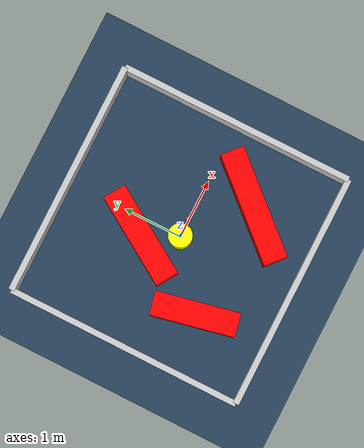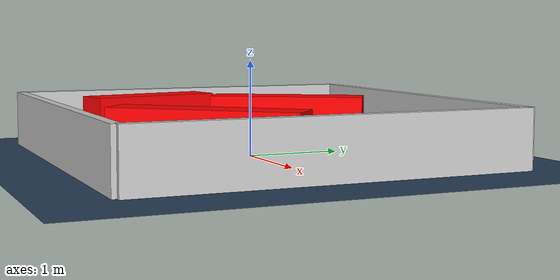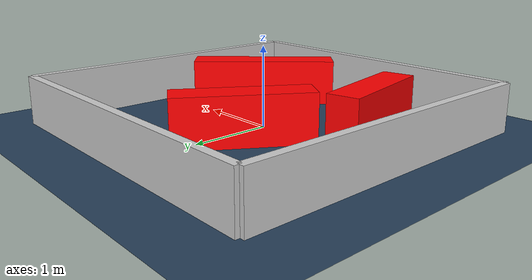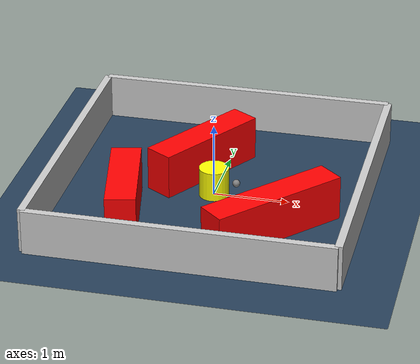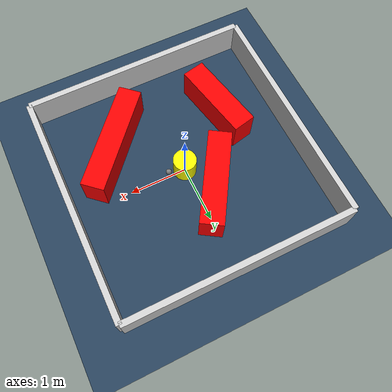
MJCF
<?xml version="1.0" ?>
<mujoco model="generated_environment">
  <option timestep="0.01" integrator="RK4" cone="elliptic"/>
  <default>
    <geom density="1"/>
  </default>
  <asset>
    <texture builtin="gradient" height="3072" rgb1="0.3 0.5 0.7" rgb2="0 0 0" type="skybox" width="512"/>
    <texture builtin="checker" height="300" mark="edge" markrgb="0.8 0.8 0.8" name="groundplane" rgb1="0.2 0.3 0.4" rgb2="0.1 0.2 0.3" type="2d" width="300"/>
    <material name="groundplane" reflectance="0.2" texrepeat="5 5" texture="groundplane" texuniform="true"/>
    <material name="robot" rgba="0.0 1.0 0.0 1"/>
  </asset>
  <worldbody>
    <light dir="0 0 -1" directional="true" pos="0 0 1.5"/>
    <geom condim="4" friction="1.0 0.005 0.001" material="groundplane" name="floor" size="0 0 0.05" type="plane"/>
    <body name="walls">
      <geom name="wall_1" condim="4" pos="-2.0 0.0 0.3" rgba="0.800000011920929 0.800000011920929 0.800000011920929 1.0" size="0.05 2.0 0.3" type="box"/>
      <geom name="wall_2" condim="4" pos="2.0 0.0 0.3" rgba="0.800000011920929 0.800000011920929 0.800000011920929 1.0" size="0.05 2.0 0.3" type="box"/>
      <geom name="wall_3" condim="4" pos="0.0 -2.0 0.3" rgba="0.800000011920929 0.800000011920929 0.800000011920929 1.0" size="2.0 0.05 0.3" type="box"/>
      <geom name="wall_4" condim="4" pos="0.0 2.0 0.3" rgba="0.800000011920929 0.800000011920929 0.800000011920929 1.0" size="2.0 0.05 0.3" type="box"/>
    </body>
    <body name="robot">
      <joint name="joint_x" type="slide" pos="0 0 0" axis="1 0 0"/>
      <joint name="joint_y" type="slide" pos="0 0 0" axis="0 1 0"/>
      <geom name="robot" type="sphere" pos="0.3 0.0 0.2" size="0.05" mass="5." friction="1.0 0.005 0.0001" condim="4" rgba="0.5 0.5 0.5 1.0"/>
      <site name="sensor_ball"/>
    </body>
    <body name="obstacle_movable_1">
      <geom name="obstacle_movable_1" condim="4" pos="0.0 0.0 0.2" euler="0 0 0.0" friction="1.0 0.005 0.001" rgba="1.0 1.0 0.0 1.0" size="0.2 0.2 0.0" type="cylinder" mass="0.1"/>
      <joint type="free"/>
    </body>
    <body name="obstacle_2_static">
      <geom name="obstacle_2_static" condim="4" pos="-0.2912335658749853 0.5610053675726083 0.3" euler="0 0 57.97286398026814" friction="1.0 0.005 0.001" rgba="1 0 0 1" size="0.8187238489327744 0.2 0.3" type="box"/>
    </body>
    <body name="obstacle_3_static">
      <geom name="obstacle_3_static" condim="4" pos="-1.0200036007217173 -0.7790535282468483 0.3" euler="0 0 281.9753631747241" friction="1.0 0.005 0.001" rgba="1 0 0 1" size="0.7059524931924607 0.2 0.3" type="box"/>
    </body>
    <body name="obstacle_4_static">
      <geom name="obstacle_4_static" condim="4" pos="0.9427530095135357 -0.8384494737273803 0.3" euler="0 0 48.23129218733107" friction="1.0 0.005 0.001" rgba="1 0 0 1" size="0.9517909363136108 0.2 0.3" type="box"/>
    </body>
  </worldbody>
  <actuator>
    <motor name="actuator_x" joint="joint_x" gear="1" ctrlrange="-1 1"/>
    <motor name="actuator_y" joint="joint_y" gear="1" ctrlrange="-1 1"/>
  </actuator>
</mujoco>
